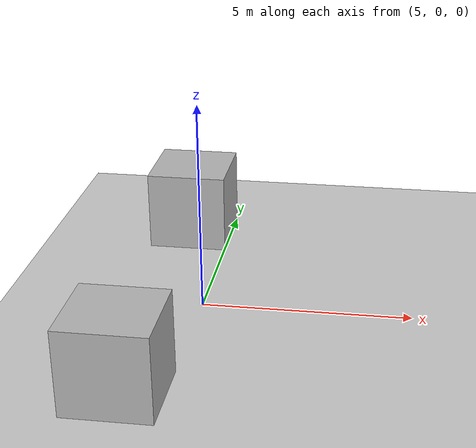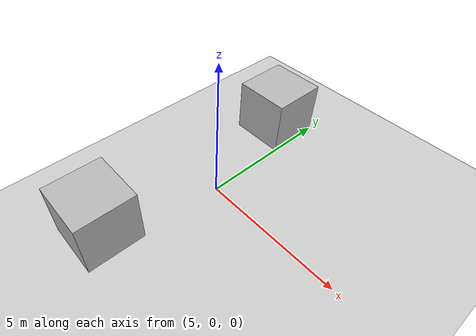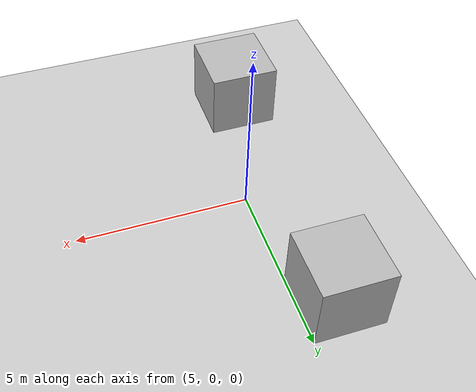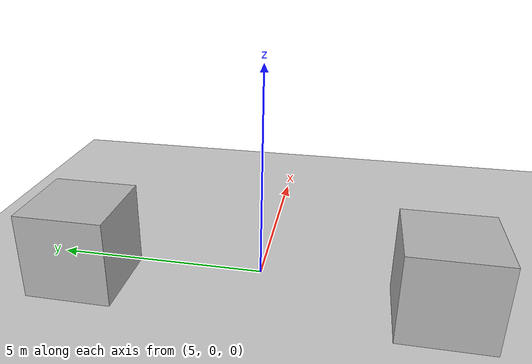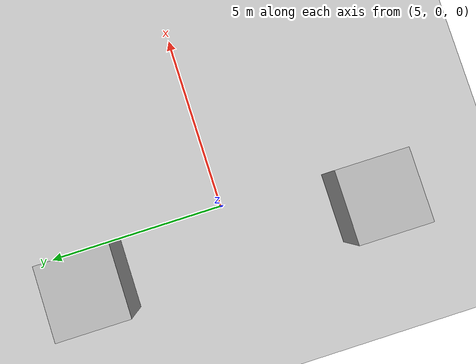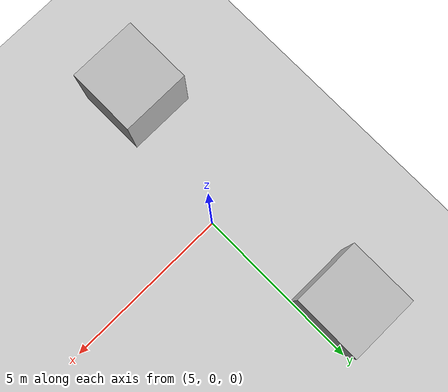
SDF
<sdf version="1.4">
 <world name="default">
  <light name="sun" type="directional">
   <pose>0 0 10 0 -0 0</pose>
   <diffuse>0.8 0.8 0.8 1</diffuse>
   <specular>0.2 0.2 0.2 1</specular>
   <attenuation>
    <range>1000</range>
    <constant>0.9</constant>
    <linear>0.01</linear>
    <quadratic>0.001</quadratic>
   </attenuation>
   <direction>-0.5 0.1 -0.9</direction>
  </light>
  <model name="ground_plane">
   <static>1</static>
   <link name="link">
    <collision name="collision">
     <geometry><plane><normal>0 0 1</normal><size>100 100</size></plane></geometry>
     <surface><friction><ode><mu>100</mu><mu2>50</mu2></ode></friction></surface>
    </collision>
    <visual name="visual">
     <cast_shadows>0</cast_shadows>
     <geometry><plane><normal>0 0 1</normal><size>100 100</size></plane></geometry>
     <material>
      <script><uri>file://media/materials/scripts/gazebo.material</uri><name>Gazebo/Grey</name></script>
     </material>
    </visual>
    <velocity_decay><linear>0</linear><angular>0</angular></velocity_decay>
   </link>
  </model>
  <model name="(DS) Cube 0">
   <static>0</static>
   <link name="link">
    <inertial>
     <mass>5</mass>
     <inertia><ixx>0.833</ixx><iyy>0.833</iyy><izz>0.833</izz><ixy>0</ixy><ixz>0</ixz><iyz>0</iyz></inertia>
    </inertial>
    <collision name="collision"><geometry><box><size>2 2 2</size></box></geometry></collision>
    <visual name="visual">
     <geometry><mesh><uri>model://ds_cube/meshes/ds_cube.dae</uri><scale>1 1 1</scale></mesh></geometry>
     <material>
      <script><uri>file://media/materials/scripts/ds_sim.material</uri><name>DSSim/DSCube</name></script>
     </material>
    </visual>
    <velocity_decay><linear>0</linear><angular>0</angular></velocity_decay>
   </link>
   <pose>3.99999 4 1 0 -0 1e-06</pose>
  </model>
  <model name="(DS) Cube 1">
   <static>0</static>
   <link name="link">
    <inertial>
     <mass>5</mass>
     <inertia><ixx>0.833</ixx><iyy>0.833</iyy><izz>0.833</izz><ixy>0</ixy><ixz>0</ixz><iyz>0</iyz></inertia>
    </inertial>
    <collision name="collision"><geometry><box><size>2 2 2</size></box></geometry></collision>
    <visual name="visual">
     <geometry><mesh><uri>model://ds_cube/meshes/ds_cube.dae</uri><scale>1 1 1</scale></mesh></geometry>
     <material>
      <script><uri>file://media/materials/scripts/ds_sim.material</uri><name>DSSim/DSCube</name></script>
     </material>
    </visual>
    <velocity_decay><linear>0</linear><angular>0</angular></velocity_decay>
   </link>
   <pose>3.99999 -4 1 0 -0 1e-06</pose>
  </model>
  <physics type="ode">
   <max_step_size>0.001</max_step_size>
   <real_time_factor>1</real_time_factor>
   <real_time_update_rate>1000</real_time_update_rate>
   <gravity>0 0 -9.8</gravity>
  </physics>
  <scene><ambient>0.4 0.4 0.4 1</ambient><background>0.7 0.7 0.7 1</background><shadows>1</shadows></scene>
  <spherical_coordinates>
   <surface_model>EARTH_WGS84</surface_model>
   <latitude_deg>0</latitude_deg>
   <longitude_deg>0</longitude_deg>
   <elevation>0</elevation>
   <heading_deg>0</heading_deg>
  </spherical_coordinates>
 </world>
</sdf>
